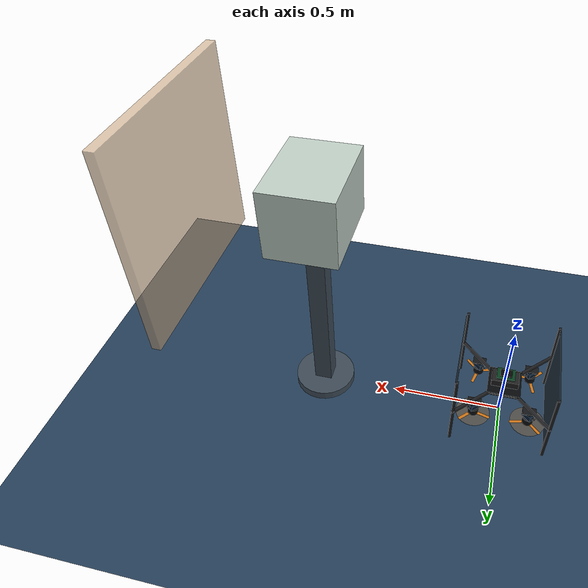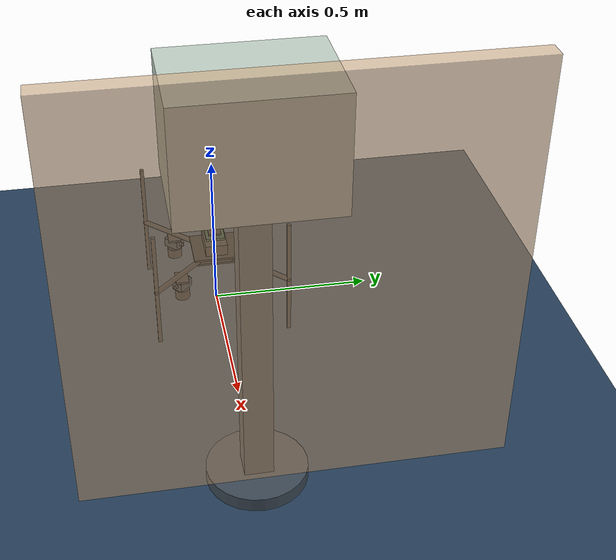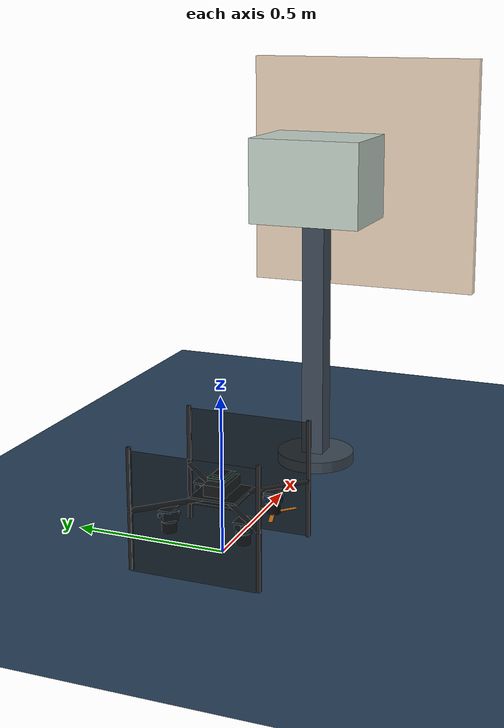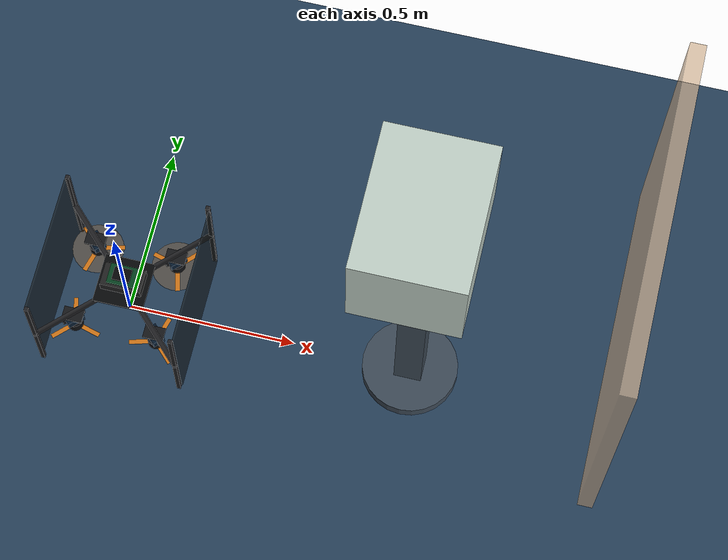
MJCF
<mujoco model="Minitrone">
  <include file="Follower.xml"/>
  <include file="palm.xml"/>
  <include file="contact_box.xml"/>

  <visual>
    <scale com="0.03"/>
    <headlight diffuse="0.6 0.6 0.6" ambient="0.3 0.3 0.3" specular="0.0 0.0 0.0"/>
    <rgba haze="0.15 0.25 0.35 1"/>
    <global azimuth="45" elevation="35.264" ellipsoidinertia="false"/>
  </visual>

  <asset>
    <!-- Muted slate-blue backdrop and a neutral grid for clear depth cues. -->
    <texture type="skybox" builtin="gradient" rgb1="0.3 0.5 0.7" rgb2="0 0 0" width="512" height="3072"/>
    <texture type="2d" name="groundplane" builtin="checker" mark="edge" rgb1="0.2 0.3 0.4" rgb2="0.1 0.2 0.3"
      markrgb="0.8 0.8 0.8" width="300" height="300"/>
    <material name="groundplane" texture="groundplane" texuniform="true" texrepeat="5 5" reflectance="0.2" specular="0" shininess="0"/>
  </asset>

  <worldbody>
    <light pos="0 0 10" dir="0 0 -1" directional="true"
      diffuse="0.225 0.24 0.275" specular="0.04 0.04 0.05"/>
    <geom name="floor" size="0 0 0.05" type="plane" material="groundplane" contype="1" conaffinity="1"/>

  </worldbody>
</mujoco>

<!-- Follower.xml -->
<mujoco model="Follower">
  <compiler angle="radian" coordinate="local" inertiafromgeom="auto" />
  <option gravity="0 0 -9.81" timestep="0.002" />
  <default>
    <geom friction="1.0 1.0 1.0" density="0" />
    <joint damping="0.1" stiffness="0" />
  </default>

  <asset>
    <!-- Lightweight visual materials: all added decorative geoms are visual-only. -->
    <material name="mat_carbon" rgba="0.025 0.028 0.032 1" specular="0.45" shininess="0.75" />
    <material name="mat_dark_metal" rgba="0.08 0.085 0.095 1" specular="0.65" shininess="0.85" />
    <material name="mat_tube" rgba="0.12 0.12 0.13 1" specular="0.35" shininess="0.55" />
    <material name="mat_motor" rgba="0.04 0.045 0.055 1" specular="0.85" shininess="0.9" />
    <material name="mat_servo" rgba="0.02 0.10 0.18 1" specular="0.45" shininess="0.55" />
    <material name="mat_prop" rgba="1.0 0.55 0.08 0.82" specular="0.35" shininess="0.5" />
    <material name="mat_prop_disc" rgba="1.0 0.55 0.05 0.18" specular="0.2" shininess="0.25" />
    <material name="mat_contact" rgba="0.10 0.12 0.13 0.70" specular="0.25" shininess="0.45" />
    <material name="mat_contact_edge" rgba="0.02 0.02 0.025 1" specular="0.35" shininess="0.55" />
    <material name="mat_battery" rgba="0.12 0.12 0.12 1" specular="0.25" shininess="0.3" />
    <material name="mat_fc" rgba="0.02 0.25 0.12 1" specular="0.25" shininess="0.45" />
  </asset>
  <worldbody>

    <!-- Viewer helpers: lights and cameras do not affect dynamics. -->
    <light name="key_light" pos="1.0 -1.0 1.6" dir="-1 1 -2" diffuse="0.425 0.425 0.425" specular="0.125 0.125 0.125" />
    <light name="fill_light" pos="-0.8 0.8 1.2" dir="1 -1 -1.5" diffuse="0.125 0.125 0.15" specular="0.025 0.025 0.025" />
    <camera name="iso_view" pos="0.75 -0.75 0.55" xyaxes="0.707 0.707 0 -0.32 0.32 0.89" />
    <camera name="front_plate_view" pos="0.75 0.00 0.20" xyaxes="0 1 0 -0.20 0 0.98" />
    <body name="drone_base" pos="0.000000000 0.000000000 0.185000000">
      <freejoint name="root" />
      <inertial pos="0.000000000 0.000000000 0.000000000" mass="2.86" diaginertia="0.0730017 0.08790154 0.10388154" />
      <site name="drone_imu" pos="0.000000000 0.000000000 0.000000000" quat="1 0 0 0" rgba="1 1 1 1" />

      <!-- Decorative visual-only central stack. Collision/dynamics remain governed by the existing geoms/inertial. -->
      <geom name="vis_top_carbon_plate" type="box" pos="0 0 0.010000000"
            size="0.074 0.074 0.003" material="mat_carbon"
            contype="0" conaffinity="0" group="1" mass="0" />
      <geom name="vis_bottom_carbon_plate" type="box" pos="0 0 -0.010000000"
            size="0.066 0.066 0.003" material="mat_carbon"
            contype="0" conaffinity="0" group="1" mass="0" />
      <geom name="vis_battery_pack" type="box" pos="0 0 0.034000000"
            size="0.060 0.035 0.018" material="mat_battery"
            contype="0" conaffinity="0" group="1" mass="0" />
      <geom name="vis_fc_board" type="box" pos="0 0 0.064000000"
            size="0.040 0.030 0.004" material="mat_fc"
            contype="0" conaffinity="0" group="1" mass="0" />
      <geom name="vis_fc_cover" type="box" pos="0 0 0.072000000"
            size="0.026 0.020 0.003" rgba="0.02 0.02 0.025 1"
            contype="0" conaffinity="0" group="1" mass="0" />

      <!-- Symmetric contact plates: each 0.400 x 0.380 x 0.006 m, mass 0.180 kg.
           Plate masses and supplied CoM inertias are included in the base inertial above. -->
      <geom name="contact_plate_px" type="box"
            pos="0.212000000 0.000000000 0.000000000"
            size="0.003000000 0.200000000 0.190000000"
            material="mat_contact" contype="1" conaffinity="1" group="0" mass="0" />
      <geom name="contact_plate_nx" type="box"
            pos="-0.212000000 0.000000000 0.000000000"
            size="0.003000000 0.200000000 0.190000000"
            material="mat_contact" contype="1" conaffinity="1" group="0" mass="0" />
      <site name="cop_sensor_pp" type="sphere" pos="0.215 0.200 0.190" size="0.008" rgba="0.1 1 0.1 0" />
      <site name="cop_sensor_np" type="sphere" pos="0.215 -0.200 0.190" size="0.008" rgba="0.1 1 0.1 0" />
      <site name="cop_sensor_nn" type="sphere" pos="0.215 -0.200 -0.190" size="0.008" rgba="0.1 1 0.1 0" />
      <site name="cop_sensor_pn" type="sphere" pos="0.215 0.200 -0.190" size="0.008" rgba="0.1 1 0.1 0" />
      <!-- Top X-frame pipes -->
      <geom name="xpipe_top1" type="capsule" fromto="-0.206249572 -0.206249572 0.000000000 0.206249572 0.206249572 0.000000000" size="0.008139933" material="mat_tube" contype="1" conaffinity="1" group="0" mass="0" />
      <geom name="xpipe_top2" type="capsule" fromto="-0.206249572 0.206249572 0.000000000 0.206249572 -0.206249572 0.000000000" size="0.008139933" material="mat_tube" contype="1" conaffinity="1" group="0" mass="0" />
      <geom name="xpipe_center_hub_vis" type="cylinder" pos="0 0 0" size="0.026 0.006" material="mat_dark_metal" contype="0" conaffinity="0" group="1" mass="0" />
      <!-- Fixed visual servo mounting pads under the centered X-frame pipes. -->
      <geom name="servo1_mount_pad_vis" type="box" pos="0.120913386 0.120913386 -0.014000000"
            size="0.030 0.020 0.003" material="mat_dark_metal"
            contype="0" conaffinity="0" group="1" mass="0" />
      <geom name="servo2_mount_pad_vis" type="box" pos="-0.120913386 0.120913386 -0.014000000"
            size="0.030 0.020 0.003" material="mat_dark_metal"
            contype="0" conaffinity="0" group="1" mass="0" />
      <geom name="servo3_mount_pad_vis" type="box" pos="-0.120913386 -0.120913386 -0.014000000"
            size="0.030 0.020 0.003" material="mat_dark_metal"
            contype="0" conaffinity="0" group="1" mass="0" />
      <geom name="servo4_mount_pad_vis" type="box" pos="0.120913386 -0.120913386 -0.014000000"
            size="0.030 0.020 0.003" material="mat_dark_metal"
            contype="0" conaffinity="0" group="1" mass="0" />
      <!-- 400 mm square-pipe legs.
           Each box has half-length z=0.200 m, so the visible/collision leg spans
           local z=-0.200 m to +0.200 m. The centered X-frame pipes cross at z=0. -->
      <geom name="leg1_shaft" type="box"
            pos="-0.206249572 0.206249572 0.000000000"
            size="0.006000000 0.006000000 0.200000000"
            material="mat_tube" contype="1" conaffinity="1" group="0" mass="0" />
      <geom name="leg2_shaft" type="box"
            pos="0.206249572 0.206249572 0.000000000"
            size="0.006000000 0.006000000 0.200000000"
            material="mat_tube" contype="1" conaffinity="1" group="0" mass="0" />
      <geom name="leg3_shaft" type="box"
            pos="0.206249572 -0.206249572 0.000000000"
            size="0.006000000 0.006000000 0.200000000"
            material="mat_tube" contype="1" conaffinity="1" group="0" mass="0" />
      <geom name="leg4_shaft" type="box"
            pos="-0.206249572 -0.206249572 0.000000000"
            size="0.006000000 0.006000000 0.200000000"
            material="mat_tube" contype="1" conaffinity="1" group="0" mass="0" />

      <body name="servo1" pos="0.120913386 0.120913386 -0.032000000" quat="0.9238795 0 0 0.3826834">
        <inertial pos="0.000000000 0.000000000 0.000000000" mass="1e-9" diaginertia="1e-12 1e-12 1e-12" />
        <joint name="j_servo1" type="hinge" axis="1 0 0" pos="0.000000000 0.000000000 0.000000000" limited="true" range="-1.57079632679 1.57079632679" armature="0.005" damping="0.02" />

        <geom name="servo1_case_vis" type="box" pos="0.000 0.000 -0.002"
              size="0.026 0.018 0.014" material="mat_servo"
              contype="0" conaffinity="0" group="1" mass="0" />
        <geom name="servo1_hinge_vis" type="cylinder" pos="0.000 0.000 0.000" quat="0.7071068 0 0.7071068 0"
              size="0.006 0.035" material="mat_dark_metal"
              contype="0" conaffinity="0" group="1" mass="0" />
        <body name="prop1_body" pos="0.000000000 0.000000000 -0.055000000">
          <geom name="prop1_col" type="cylinder" pos="0.000000000 0.000000000 0.000000000" size="0.0762 0.001" mass="1e-9" material="mat_prop_disc" contype="0" conaffinity="0" group="1" />
                    <geom name="motor1_can_vis" type="cylinder" pos="0 0 0.018" size="0.023 0.016"
                material="mat_motor" contype="0" conaffinity="0" group="1" mass="0" />
          <geom name="motor1_hub_vis" type="cylinder" pos="0 0 0.006" size="0.010 0.004"
                material="mat_dark_metal" contype="0" conaffinity="0" group="1" mass="0" />
          <geom name="prop1_blade1_vis" type="box" pos="0.038000 0.000000 0.004"
                quat="1.0000000 0 0 0.0000000" size="0.041 0.0065 0.0008"
                material="mat_prop" contype="0" conaffinity="0" group="1" mass="0" />
          <geom name="prop1_blade2_vis" type="box" pos="-0.019000 0.032909 0.004"
                quat="0.5000000 0 0 0.8660254" size="0.041 0.0065 0.0008"
                material="mat_prop" contype="0" conaffinity="0" group="1" mass="0" />
          <geom name="prop1_blade3_vis" type="box" pos="-0.019000 -0.032909 0.004"
                quat="-0.5000000 0 0 0.8660254" size="0.041 0.0065 0.0008"
                material="mat_prop" contype="0" conaffinity="0" group="1" mass="0" />
          <site name="prop1_site" pos="0.000000000 0.000000000 0.000000000" size="0.005426622" type="sphere" rgba="1 1 1 0" />
        </body>
      </body>
      <body name="servo2" pos="-0.120913386 0.120913386 -0.032000000" quat="0.3826834 0 0 0.9238795">
        <!-- Tiny dummy inertia for MuJoCo compile stability; not intended as physical mass. -->
        <inertial pos="0.000000000 0.000000000 0.000000000" mass="1e-9" diaginertia="1e-12 1e-12 1e-12" />
        <joint name="j_servo2" type="hinge" axis="1 0 0" pos="0.000000000 0.000000000 0.000000000" limited="true" range="-1.57079632679 1.57079632679" armature="0.005" damping="0.02" />

        <geom name="servo2_case_vis" type="box" pos="0.000 0.000 -0.002"
              size="0.026 0.018 0.014" material="mat_servo"
              contype="0" conaffinity="0" group="1" mass="0" />
        <geom name="servo2_hinge_vis" type="cylinder" pos="0.000 0.000 0.000" quat="0.7071068 0 0.7071068 0"
              size="0.006 0.035" material="mat_dark_metal"
              contype="0" conaffinity="0" group="1" mass="0" />
        <body name="prop2_body" pos="0.000000000 0.000000000 -0.055000000">
          <geom name="prop2_col" type="cylinder" pos="0.000000000 0.000000000 0.000000000" size="0.0762 0.001" mass="1e-9" material="mat_prop_disc" contype="0" conaffinity="0" group="2" />
                    <geom name="motor2_can_vis" type="cylinder" pos="0 0 0.018" size="0.023 0.016"
                material="mat_motor" contype="0" conaffinity="0" group="1" mass="0" />
          <geom name="motor2_hub_vis" type="cylinder" pos="0 0 0.006" size="0.010 0.004"
                material="mat_dark_metal" contype="0" conaffinity="0" group="1" mass="0" />
          <geom name="prop2_blade1_vis" type="box" pos="0.038000 0.000000 0.004"
                quat="1.0000000 0 0 0.0000000" size="0.041 0.0065 0.0008"
                material="mat_prop" contype="0" conaffinity="0" group="1" mass="0" />
          <geom name="prop2_blade2_vis" type="box" pos="-0.019000 0.032909 0.004"
                quat="0.5000000 0 0 0.8660254" size="0.041 0.0065 0.0008"
                material="mat_prop" contype="0" conaffinity="0" group="1" mass="0" />
          <geom name="prop2_blade3_vis" type="box" pos="-0.019000 -0.032909 0.004"
                quat="-0.5000000 0 0 0.8660254" size="0.041 0.0065 0.0008"
                material="mat_prop" contype="0" conaffinity="0" group="1" mass="0" />
          <site name="prop2_site" pos="0.000000000 0.000000000 0.000000000" size="0.005426622" type="sphere" rgba="1 1 1 0" />
        </body>
      </body>
      <body name="servo3" pos="-0.120913386 -0.120913386 -0.032000000" quat="0.3826834 0 0 -0.9238795">
        <inertial pos="0.000000000 0.000000000 0.000000000" mass="1e-9" diaginertia="1e-12 1e-12 1e-12" />
        <joint name="j_servo3" type="hinge" axis="1 0 0" pos="0.000000000 0.000000000 0.000000000" limited="true" range="-1.57079632679 1.57079632679" armature="0.005" damping="0.02" />

        <geom name="servo3_case_vis" type="box" pos="0.000 0.000 -0.002"
              size="0.026 0.018 0.014" material="mat_servo"
              contype="0" conaffinity="0" group="1" mass="0" />
        <geom name="servo3_hinge_vis" type="cylinder" pos="0.000 0.000 0.000" quat="0.7071068 0 0.7071068 0"
              size="0.006 0.035" material="mat_dark_metal"
              contype="0" conaffinity="0" group="1" mass="0" />
        <body name="prop3_body" pos="0.000000000 0.000000000 -0.055000000">
          <geom name="prop3_col" type="cylinder" pos="0.000000000 0.000000000 0.000000000" size="0.0762 0.001" mass="1e-9" material="mat_prop_disc" contype="0" conaffinity="0" group="3" />
                    <geom name="motor3_can_vis" type="cylinder" pos="0 0 0.018" size="0.023 0.016"
                material="mat_motor" contype="0" conaffinity="0" group="1" mass="0" />
          <geom name="motor3_hub_vis" type="cylinder" pos="0 0 0.006" size="0.010 0.004"
                material="mat_dark_metal" contype="0" conaffinity="0" group="1" mass="0" />
          <geom name="prop3_blade1_vis" type="box" pos="0.038000 0.000000 0.004"
                quat="1.0000000 0 0 0.0000000" size="0.041 0.0065 0.0008"
                material="mat_prop" contype="0" conaffinity="0" group="1" mass="0" />
          <geom name="prop3_blade2_vis" type="box" pos="-0.019000 0.032909 0.004"
                quat="0.5000000 0 0 0.8660254" size="0.041 0.0065 0.0008"
                material="mat_prop" contype="0" conaffinity="0" group="1" mass="0" />
          <geom name="prop3_blade3_vis" type="box" pos="-0.019000 -0.032909 0.004"
                quat="-0.5000000 0 0 0.8660254" size="0.041 0.0065 0.0008"
                material="mat_prop" contype="0" conaffinity="0" group="1" mass="0" />
          <site name="prop3_site" pos="0.000000000 0.000000000 0.000000000" size="0.005426622" type="sphere" rgba="1 1 1 0" />
        </body>
      </body>
      <body name="servo4" pos="0.120913386 -0.120913386 -0.032000000" quat="0.9238795 0 0 -0.3826834">
        <inertial pos="0.000000000 0.000000000 0.000000000" mass="1e-9" diaginertia="1e-12 1e-12 1e-12" />
        <joint name="j_servo4" type="hinge" axis="1 0 0" pos="0.000000000 0.000000000 0.000000000" limited="true" range="-1.57079632679 1.57079632679" armature="0.005" damping="0.02" />

        <geom name="servo4_case_vis" type="box" pos="0.000 0.000 -0.002"
              size="0.026 0.018 0.014" material="mat_servo"
              contype="0" conaffinity="0" group="1" mass="0" />
        <geom name="servo4_hinge_vis" type="cylinder" pos="0.000 0.000 0.000" quat="0.7071068 0 0.7071068 0"
              size="0.006 0.035" material="mat_dark_metal"
              contype="0" conaffinity="0" group="1" mass="0" />
        <body name="prop4_body" pos="0.000000000 0.000000000 -0.055000000">
          <geom name="prop4_col" type="cylinder" pos="0.000000000 0.000000000 0.000000000" size="0.0762 0.001" mass="1e-9" material="mat_prop_disc" contype="0" conaffinity="0" group="4" />
                    <geom name="motor4_can_vis" type="cylinder" pos="0 0 0.018" size="0.023 0.016"
                material="mat_motor" contype="0" conaffinity="0" group="1" mass="0" />
          <geom name="motor4_hub_vis" type="cylinder" pos="0 0 0.006" size="0.010 0.004"
                material="mat_dark_metal" contype="0" conaffinity="0" group="1" mass="0" />
          <geom name="prop4_blade1_vis" type="box" pos="0.038000 0.000000 0.004"
                quat="1.0000000 0 0 0.0000000" size="0.041 0.0065 0.0008"
                material="mat_prop" contype="0" conaffinity="0" group="1" mass="0" />
          <geom name="prop4_blade2_vis" type="box" pos="-0.019000 0.032909 0.004"
                quat="0.5000000 0 0 0.8660254" size="0.041 0.0065 0.0008"
                material="mat_prop" contype="0" conaffinity="0" group="1" mass="0" />
          <geom name="prop4_blade3_vis" type="box" pos="-0.019000 -0.032909 0.004"
                quat="-0.5000000 0 0 0.8660254" size="0.041 0.0065 0.0008"
                material="mat_prop" contype="0" conaffinity="0" group="1" mass="0" />
          <site name="prop4_site" pos="0.000000000 0.000000000 0.000000000" size="0.005426622" type="sphere" rgba="1 1 1 0" />
        </body>
      </body>
    </body>
  </worldbody>
  <actuator>
    <general name="BLDC1" site="prop1_site" gear="0 0 1 0 0  0.02" ctrlrange="0 15" />
    <general name="BLDC2" site="prop2_site" gear="0 0 1 0 0 -0.02" ctrlrange="0 15" />
    <general name="BLDC3" site="prop3_site" gear="0 0 1 0 0  0.02" ctrlrange="0 15" />
    <general name="BLDC4" site="prop4_site" gear="0 0 1 0 0 -0.02" ctrlrange="0 15" />
    <position name="servo1_pos" joint="j_servo1" kp="10" kv="0.2" ctrlrange="-1.57079632679 1.57079632679" />
    <position name="servo2_pos" joint="j_servo2" kp="10" kv="0.2" ctrlrange="-1.57079632679 1.57079632679" />
    <position name="servo3_pos" joint="j_servo3" kp="10" kv="0.2" ctrlrange="-1.57079632679 1.57079632679" />
    <position name="servo4_pos" joint="j_servo4" kp="10" kv="0.2" ctrlrange="-1.57079632679 1.57079632679" />
  </actuator>
  <sensor>
    <!-- Contact-plate corner force sensors: (+y,+z), (-y,+z), (-y,-z), (+y,-z). -->
    <touch name="cop_force_pp" site="cop_sensor_pp" />
    <touch name="cop_force_np" site="cop_sensor_np" />
    <touch name="cop_force_nn" site="cop_sensor_nn" />
    <touch name="cop_force_pn" site="cop_sensor_pn" />
    <!-- IMU site: drone_imu -->
    <framequat name="body_quat" objtype="site" objname="drone_imu" />
    <gyro name="body_gyro" site="drone_imu" />
    <!-- Base body: drone_base -->
    <framepos name="base_pos" objtype="body" objname="drone_base" />
    <framelinvel name="base_linvel" objtype="body" objname="drone_base" />
    <!-- Servo sensors -->
    <jointpos name="servo1_angle" joint="j_servo1" />
    <jointpos name="servo2_angle" joint="j_servo2" />
    <jointpos name="servo3_angle" joint="j_servo3" />
    <jointpos name="servo4_angle" joint="j_servo4" />
    <jointvel name="servo1_vel" joint="j_servo1" />
    <jointvel name="servo2_vel" joint="j_servo2" />
    <jointvel name="servo3_vel" joint="j_servo3" />
    <jointvel name="servo4_vel" joint="j_servo4" />
    <!-- Propeller site states -->
    <framepos name="prop1_pos" objtype="site" objname="prop1_site" />
    <framepos name="prop2_pos" objtype="site" objname="prop2_site" />
    <framepos name="prop3_pos" objtype="site" objname="prop3_site" />
    <framepos name="prop4_pos" objtype="site" objname="prop4_site" />
    <framequat name="prop1_quat" objtype="site" objname="prop1_site" />
    <framequat name="prop2_quat" objtype="site" objname="prop2_site" />
    <framequat name="prop3_quat" objtype="site" objname="prop3_site" />
    <framequat name="prop4_quat" objtype="site" objname="prop4_site" />
    <framelinvel name="prop1_linvel" objtype="site" objname="prop1_site" />
    <framelinvel name="prop2_linvel" objtype="site" objname="prop2_site" />
    <framelinvel name="prop3_linvel" objtype="site" objname="prop3_site" />
    <framelinvel name="prop4_linvel" objtype="site" objname="prop4_site" />
    <frameangvel name="prop1_angvel" objtype="site" objname="prop1_site" />
    <frameangvel name="prop2_angvel" objtype="site" objname="prop2_site" />
    <frameangvel name="prop3_angvel" objtype="site" objname="prop3_site" />
    <frameangvel name="prop4_angvel" objtype="site" objname="prop4_site" />
  </sensor>
</mujoco>

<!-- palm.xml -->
<mujoco model="palm">
  <worldbody>
    <body name="hand_palm_mount" pos="1.4 0 1.0" quat="1 0 0 0">
      <joint name="hand_palm_slide_x" type="slide" axis="1 0 0" limited="true" range="-100.0 100.0" damping="80" />
      <joint name="hand_palm_slide_y" type="slide" axis="0 1 0" limited="true" range="-100.0 100.0" damping="80" />
      <joint name="hand_palm_slide_z" type="slide" axis="0 0 1" limited="true" range="-100.0 100.0" damping="80" />
      <inertial pos="0 0 0" mass="1e-9" diaginertia="1e-12 1e-12 1e-12" />
      <body name="hand_palm_yaw_frame">
        <joint name="hand_palm_yaw" type="hinge" axis="0 0 1" limited="true" range="-3.14159265359 3.14159265359" damping="20" />
        <inertial pos="0 0 0" mass="1e-9" diaginertia="1e-12 1e-12 1e-12" />
        <body name="hand_palm_pitch_frame">
          <joint name="hand_palm_pitch" type="hinge" axis="0 1 0" limited="true" range="-1.57079632679 1.57079632679" damping="20" />
          <inertial pos="0 0 0" mass="1e-9" diaginertia="1e-12 1e-12 1e-12" />
          <body name="hand_palm" pos="0 0 0">
            <joint name="hand_palm_roll" type="hinge" axis="1 0 0" limited="true" range="-1.57079632679 1.57079632679" damping="20" />
            <inertial pos="0 0 0" mass="5.0" diaginertia="0.675 0.338167 0.338167" />
            <geom
              name="hand_palm_vis"
              type="box"
              size="0.02 0.45 0.45"
              mass="0"
              rgba="0.85 0.72 0.58 0.7"
              contype="0"
              conaffinity="0"/>
            <geom
              name="hand_palm_col"
              type="box"
              size="0.02 0.45 0.45"
              mass="0"
              rgba="1 0 0 0.25"
              contype="1"
              conaffinity="1"
              condim="6"
              friction="1.2 0.03 0.01"
              solref="-800 -80"
              solimp="0.9 0.96 0.002"
              margin="0.005"
              group="5"/>
          </body>
        </body>
      </body>
    </body>
  </worldbody>

  <actuator>
    <position name="hand_palm_slide_x_pos" joint="hand_palm_slide_x" kp="3000" kv="200" ctrlrange="-100.0 100.0" />
    <position name="hand_palm_slide_y_pos" joint="hand_palm_slide_y" kp="3000" kv="200" ctrlrange="-100.0 100.0" />
    <position name="hand_palm_slide_z_pos" joint="hand_palm_slide_z" kp="3000" kv="200" ctrlrange="-100.0 100.0" />
    <position name="hand_palm_yaw_pos" joint="hand_palm_yaw" kp="800" kv="60" ctrlrange="-3.14159265359 3.14159265359" />
    <position name="hand_palm_pitch_pos" joint="hand_palm_pitch" kp="800" kv="60" ctrlrange="-1.57079632679 1.57079632679" />
    <position name="hand_palm_roll_pos" joint="hand_palm_roll" kp="800" kv="60" ctrlrange="-1.57079632679 1.57079632679" />
  </actuator>
</mujoco>

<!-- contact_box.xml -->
<mujoco model="contact_box">
  <asset>
    <material name="contact_box_plastic" rgba="0.76 0.82 0.78 1"
              specular="0.15" shininess="0.20"/>
    <material name="contact_box_stand_metal" rgba="0.24 0.29 0.34 1"
              specular="0.20" shininess="0.30"/>
  </asset>

  <worldbody>
    <!-- Fixed pedestal: the 0.90 m post supports the box by contact only.
         Both +/-X box faces remain accessible for a future two-drone grasp. -->
    <body name="contact_box_stand" pos="0.85 0 0">
      <geom name="contact_box_stand_base" type="cylinder"
            pos="0 0 0.02" size="0.14 0.02"
            material="contact_box_stand_metal" contype="1" conaffinity="3"/>
      <geom name="contact_box_stand_post" type="box"
            pos="0 0 0.47" size="0.04 0.04 0.43"
            material="contact_box_stand_metal" contype="1" conaffinity="3"
            condim="3" friction="0.6 0 0" solref="0.01 1"/>
    </body>

    <body name="contact_box" pos="0.85 0 1.05">
      <freejoint name="contact_box_free"/>
      <inertial pos="0 0 0" mass="0.5"
                diaginertia="0.01668440 0.01286978 0.01668440"/>
      <!-- Accept ordinary geoms (bit 1) and the isolated drone plate (bit 2).
           Sliding friction enables a compression grasp without adhesion. -->
      <geom name="contact_box_collision" type="box" size="0.15 0.20 0.15"
            material="contact_box_plastic" contype="1" conaffinity="3"
            condim="3" friction="0.8 0 0" solref="0.01 1"
            solimp="0.95 0.99 0.001" margin="0"/>
    </body>
  </worldbody>
</mujoco>
